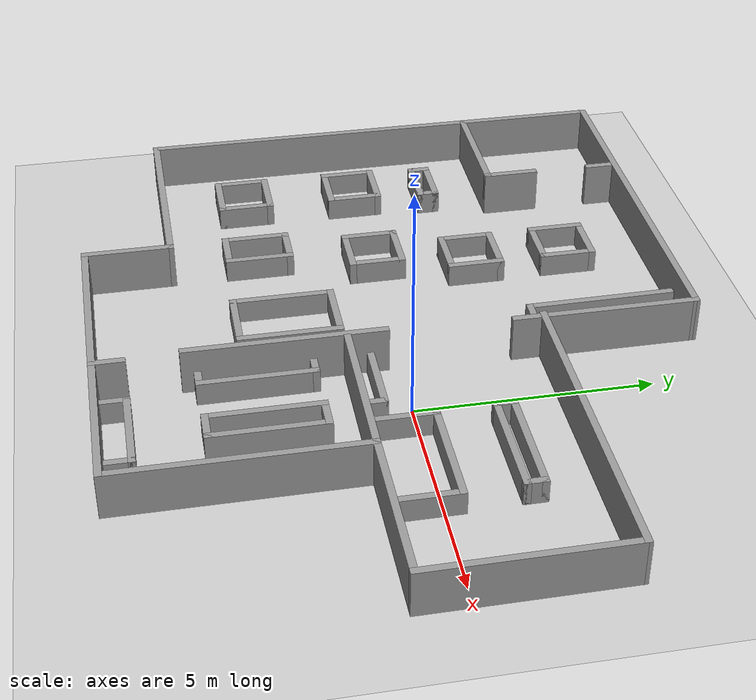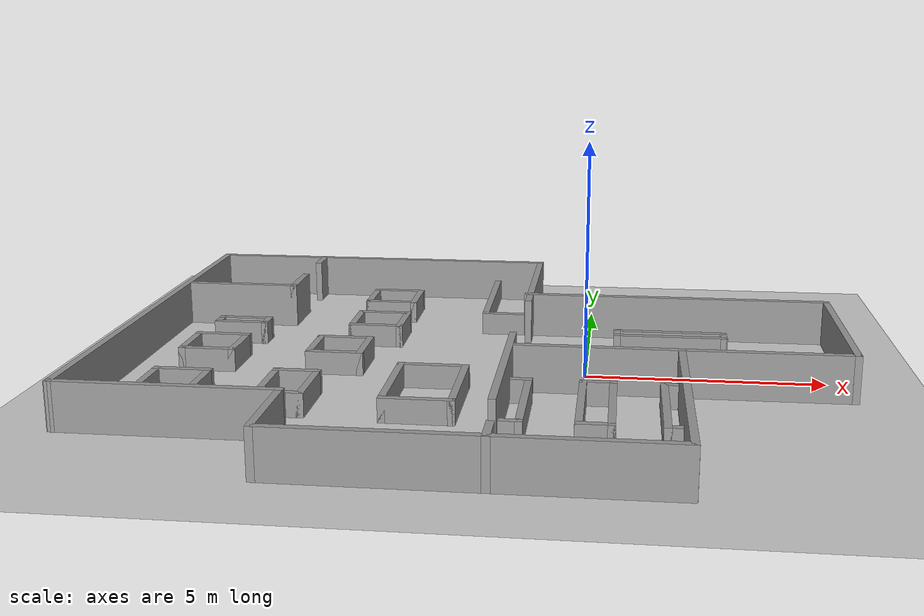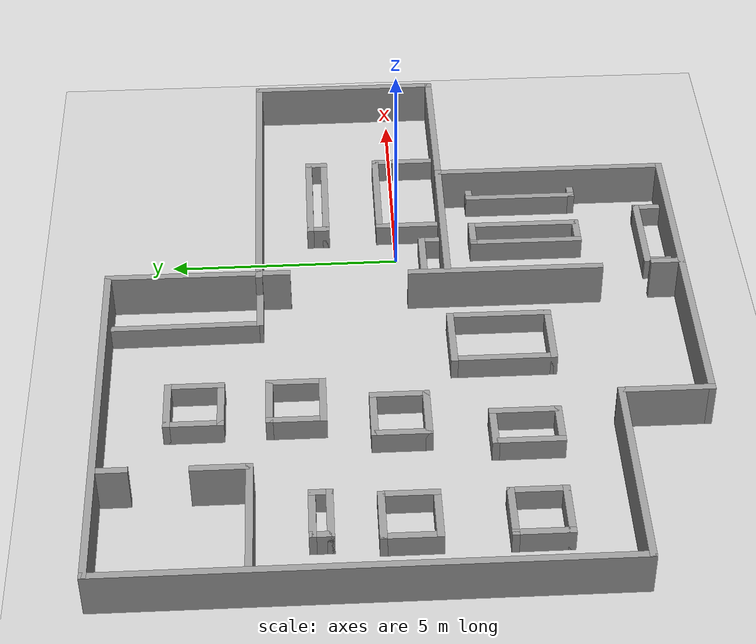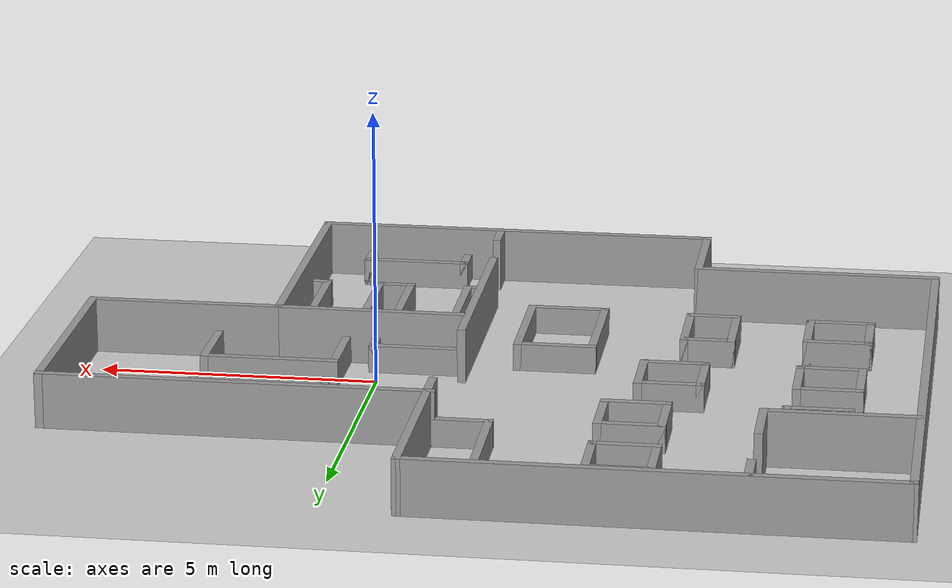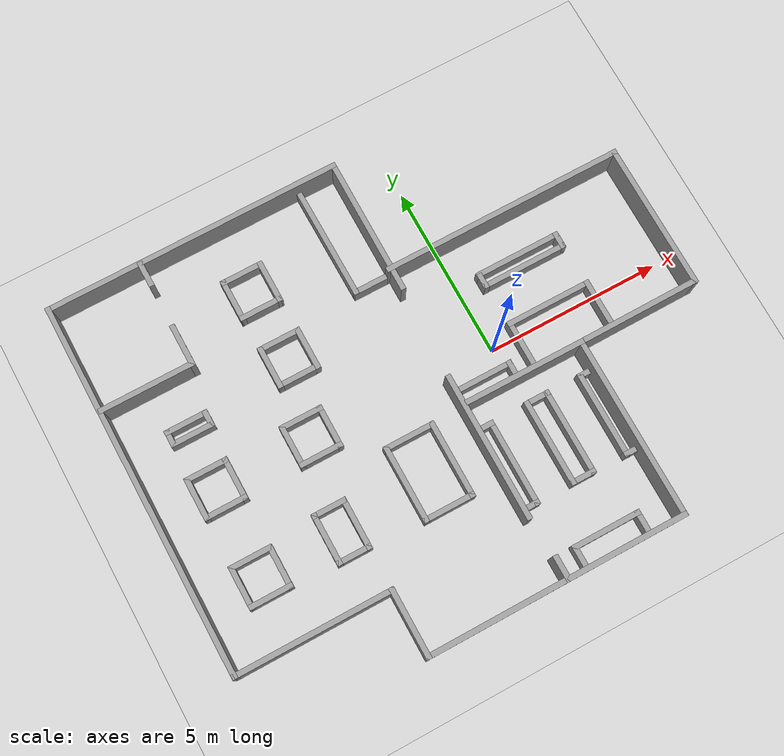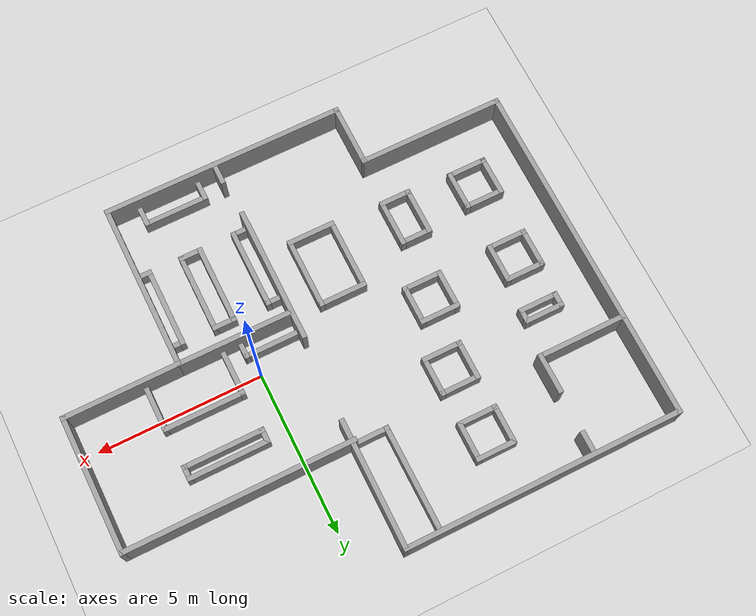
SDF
<sdf version="1.7">
 <world name="default">
  <light name="sun" type="directional">
   <pose>0 0 10 0 -0 0</pose>
   <diffuse>0.8 0.8 0.8 1</diffuse>
   <specular>0.2 0.2 0.2 1</specular>
   <attenuation>
    <range>1000</range>
    <constant>0.9</constant>
    <linear>0.01</linear>
    <quadratic>0.001</quadratic>
   </attenuation>
   <direction>-0.5 0.1 -0.9</direction>
   <spot><inner_angle>0</inner_angle><outer_angle>0</outer_angle><falloff>0</falloff></spot>
  </light>
  <model name="ground_plane">
   <static>1</static>
   <link name="link">
    <collision name="collision">
     <geometry><plane><normal>0 0 1</normal><size>100 100</size></plane></geometry>
     <surface>
      <contact><collide_bitmask>65535</collide_bitmask></contact>
      <friction><ode><mu>100</mu><mu2>50</mu2></ode></friction>
     </surface>
    </collision>
    <visual name="visual">
     <cast_shadows>0</cast_shadows>
     <geometry><plane><normal>0 0 1</normal><size>100 100</size></plane></geometry>
     <material>
      <script><uri>file://media/materials/scripts/gazebo.material</uri><name>Gazebo/Grey</name></script>
     </material>
    </visual>
   </link>
  </model>
  <gravity>0 0 -9.8</gravity>
  <magnetic_field>6e-06 2.3e-05 -4.2e-05</magnetic_field>
  <atmosphere type="adiabatic"/>
  <physics type="ode">
   <max_step_size>0.001</max_step_size>
   <real_time_factor>1</real_time_factor>
   <real_time_update_rate>1000</real_time_update_rate>
  </physics>
  <scene><ambient>0.4 0.4 0.4 1</ambient><background>0.7 0.7 0.7 1</background><shadows>1</shadows></scene>
  <audio><device>default</device></audio>
  <spherical_coordinates>
   <surface_model>EARTH_WGS84</surface_model>
   <latitude_deg>0</latitude_deg>
   <longitude_deg>0</longitude_deg>
   <elevation>0</elevation>
   <heading_deg>0</heading_deg>
  </spherical_coordinates>
  <model name="P1_model">
   <pose>-2.19843 0.064103 0 0 -0 0</pose>
   <link name="Wall_0">
    <collision name="Wall_0_Collision">
     <geometry><box><size>7.5 0.15 1</size></box></geometry>
     <pose>0 0 0.5 0 -0 0</pose>
    </collision>
    <visual name="Wall_0_Visual">
     <pose>0 0 0.5 0 -0 0</pose>
     <geometry><box><size>7.5 0.15 1</size></box></geometry>
     <material>
      <script><uri>file://media/materials/scripts/gazebo.material</uri><name>Gazebo/Grey</name></script>
      <ambient>1 1 1 1</ambient>
     </material>
     <meta><layer>0</layer></meta>
    </visual>
    <pose>0.473428 -6.2241 0 0 -0 3.14159</pose>
   </link>
   <link name="Wall_1">
    <collision name="Wall_1_Collision">
     <geometry><box><size>2 0.15 1</size></box></geometry>
     <pose>0 0 0.5 0 -0 0</pose>
    </collision>
    <visual name="Wall_1_Visual">
     <pose>0 0 0.5 0 -0 0</pose>
     <geometry><box><size>2 0.15 1</size></box></geometry>
     <material>
      <script><uri>file://media/materials/scripts/gazebo.material</uri><name>Gazebo/Grey</name></script>
      <ambient>1 1 1 1</ambient>
     </material>
     <meta><layer>0</layer></meta>
    </visual>
    <pose>-3.20157 -5.2991 0 0 -0 1.5708</pose>
   </link>
   <link name="Wall_10">
    <collision name="Wall_10_Collision">
     <geometry><box><size>0.75 0.15 1</size></box></geometry>
     <pose>0 0 0.5 0 -0 0</pose>
    </collision>
    <visual name="Wall_10_Visual">
     <pose>0 0 0.5 0 -0 0</pose>
     <geometry><box><size>0.75 0.15 1</size></box></geometry>
     <material>
      <script><uri>file://media/materials/scripts/gazebo.material</uri><name>Gazebo/Grey</name></script>
      <ambient>1 1 1 1</ambient>
     </material>
     <meta><layer>0</layer></meta>
    </visual>
    <pose>0.772428 -5.9261 0 0 -0 -1.5708</pose>
   </link>
   <link name="Wall_100">
    <collision name="Wall_100_Collision">
     <geometry><box><size>1.25 0.15 0.5</size></box></geometry>
     <pose>0 0 0.25 0 -0 0</pose>
    </collision>
    <visual name="Wall_100_Visual">
     <pose>0 0 0.25 0 -0 0</pose>
     <geometry><box><size>1.25 0.15 0.5</size></box></geometry>
     <material>
      <script><uri>file://media/materials/scripts/gazebo.material</uri><name>Gazebo/Grey</name></script>
      <ambient>1 1 1 1</ambient>
     </material>
     <meta><layer>0</layer></meta>
    </visual>
    <pose>-3.20357 2.2349 0 0 -0 -1.5708</pose>
   </link>
   <link name="Wall_102">
    <collision name="Wall_102_Collision">
     <geometry><box><size>1.25 0.15 0.5</size></box></geometry>
     <pose>0 0 0.25 0 -0 0</pose>
    </collision>
    <visual name="Wall_102_Visual">
     <pose>0 0 0.25 0 -0 0</pose>
     <geometry><box><size>1.25 0.15 0.5</size></box></geometry>
     <material>
      <script><uri>file://media/materials/scripts/gazebo.material</uri><name>Gazebo/Grey</name></script>
      <ambient>1 1 1 1</ambient>
     </material>
     <meta><layer>0</layer></meta>
    </visual>
    <pose>-2.67657 3.7779 0 0 -0 0</pose>
   </link>
   <link name="Wall_103">
    <collision name="Wall_103_Collision">
     <geometry><box><size>1.25 0.15 0.5</size></box></geometry>
     <pose>0 0 0.25 0 -0 0</pose>
    </collision>
    <visual name="Wall_103_Visual">
     <pose>0 0 0.25 0 -0 0</pose>
     <geometry><box><size>1.25 0.15 0.5</size></box></geometry>
     <material>
      <script><uri>file://media/materials/scripts/gazebo.material</uri><name>Gazebo/Grey</name></script>
      <ambient>1 1 1 1</ambient>
     </material>
     <meta><layer>0</layer></meta>
    </visual>
    <pose>-2.12657 4.3279 0 0 -0 1.5708</pose>
   </link>
   <link name="Wall_104">
    <collision name="Wall_104_Collision">
     <geometry><box><size>1.25 0.15 0.5</size></box></geometry>
     <pose>0 0 0.25 0 -0 0</pose>
    </collision>
    <visual name="Wall_104_Visual">
     <pose>0 0 0.25 0 -0 0</pose>
     <geometry><box><size>1.25 0.15 0.5</size></box></geometry>
     <material>
      <script><uri>file://media/materials/scripts/gazebo.material</uri><name>Gazebo/Grey</name></script>
      <ambient>1 1 1 1</ambient>
     </material>
     <meta><layer>0</layer></meta>
    </visual>
    <pose>-2.67657 4.8779 0 0 -0 3.14159</pose>
   </link>
   <link name="Wall_105">
    <collision name="Wall_105_Collision">
     <geometry><box><size>1.25 0.15 0.5</size></box></geometry>
     <pose>0 0 0.25 0 -0 0</pose>
    </collision>
    <visual name="Wall_105_Visual">
     <pose>0 0 0.25 0 -0 0</pose>
     <geometry><box><size>1.25 0.15 0.5</size></box></geometry>
     <material>
      <script><uri>file://media/materials/scripts/gazebo.material</uri><name>Gazebo/Grey</name></script>
      <ambient>1 1 1 1</ambient>
     </material>
     <meta><layer>0</layer></meta>
    </visual>
    <pose>-3.22657 4.3279 0 0 -0 -1.5708</pose>
   </link>
   <link name="Wall_107">
    <collision name="Wall_107_Collision">
     <geometry><box><size>1 0.15 0.5</size></box></geometry>
     <pose>0 0 0.25 0 -0 0</pose>
    </collision>
    <visual name="Wall_107_Visual">
     <pose>0 0 0.25 0 -0 0</pose>
     <geometry><box><size>1 0.15 0.5</size></box></geometry>
     <material>
      <script><uri>file://media/materials/scripts/gazebo.material</uri><name>Gazebo/Grey</name></script>
      <ambient>1 1 1 1</ambient>
     </material>
     <meta><layer>0</layer></meta>
    </visual>
    <pose>-3.59557 -3.1111 0 0 -0 0</pose>
   </link>
   <link name="Wall_108">
    <collision name="Wall_108_Collision">
     <geometry><box><size>1.5 0.15 0.5</size></box></geometry>
     <pose>0 0 0.25 0 -0 0</pose>
    </collision>
    <visual name="Wall_108_Visual">
     <pose>0 0 0.25 0 -0 0</pose>
     <geometry><box><size>1.5 0.15 0.5</size></box></geometry>
     <material>
      <script><uri>file://media/materials/scripts/gazebo.material</uri><name>Gazebo/Grey</name></script>
      <ambient>1 1 1 1</ambient>
     </material>
     <meta><layer>0</layer></meta>
    </visual>
    <pose>-3.17057 -2.4361 0 0 -0 1.5708</pose>
   </link>
   <link name="Wall_109">
    <collision name="Wall_109_Collision">
     <geometry><box><size>1 0.15 0.5</size></box></geometry>
     <pose>0 0 0.25 0 -0 0</pose>
    </collision>
    <visual name="Wall_109_Visual">
     <pose>0 0 0.25 0 -0 0</pose>
     <geometry><box><size>1 0.15 0.5</size></box></geometry>
     <material>
      <script><uri>file://media/materials/scripts/gazebo.material</uri><name>Gazebo/Grey</name></script>
      <ambient>1 1 1 1</ambient>
     </material>
     <meta><layer>0</layer></meta>
    </visual>
    <pose>-3.59557 -1.7611 0 0 -0 3.14159</pose>
   </link>
   <link name="Wall_110">
    <collision name="Wall_110_Collision">
     <geometry><box><size>1.5 0.15 0.5</size></box></geometry>
     <pose>0 0 0.25 0 -0 0</pose>
    </collision>
    <visual name="Wall_110_Visual">
     <pose>0 0 0.25 0 -0 0</pose>
     <geometry><box><size>1.5 0.15 0.5</size></box></geometry>
     <material>
      <script><uri>file://media/materials/scripts/gazebo.material</uri><name>Gazebo/Grey</name></script>
      <ambient>1 1 1 1</ambient>
     </material>
     <meta><layer>0</layer></meta>
    </visual>
    <pose>-4.02057 -2.4361 0 0 -0 -1.5708</pose>
   </link>
   <link name="Wall_12">
    <collision name="Wall_12_Collision">
     <geometry><box><size>3.50002 0.15 1</size></box></geometry>
     <pose>0 0 0.5 0 -0 0</pose>
    </collision>
    <visual name="Wall_12_Visual">
     <pose>0 0 0.5 0 -0 0</pose>
     <geometry><box><size>3.50002 0.15 1</size></box></geometry>
     <material>
      <script><uri>file://media/materials/scripts/gazebo.material</uri><name>Gazebo/Grey</name></script>
      <ambient>1 1 1 1</ambient>
     </material>
     <meta><layer>0</layer></meta>
    </visual>
    <pose>2.47543 -1.1161 0 0 -0 -0.003582</pose>
   </link>
   <link name="Wall_13">
    <collision name="Wall_13_Collision">
     <geometry><box><size>5.25 0.15 1</size></box></geometry>
     <pose>0 0 0.5 0 -0 0</pose>
    </collision>
    <visual name="Wall_13_Visual">
     <pose>0 0 0.5 0 -0 0</pose>
     <geometry><box><size>5.25 0.15 1</size></box></geometry>
     <material>
      <script><uri>file://media/materials/scripts/gazebo.material</uri><name>Gazebo/Grey</name></script>
      <ambient>1 1 1 1</ambient>
     </material>
     <meta><layer>0</layer></meta>
    </visual>
    <pose>4.15043 -3.6721 0 0 -0 -1.5708</pose>
   </link>
   <link name="Wall_16">
    <collision name="Wall_16_Collision">
     <geometry><box><size>7 0.15 1</size></box></geometry>
     <pose>0 0 0.5 0 -0 0</pose>
    </collision>
    <visual name="Wall_16_Visual">
     <pose>0 0 0.5 0 -0 0</pose>
     <geometry><box><size>7 0.15 1</size></box></geometry>
     <material>
      <script><uri>file://media/materials/scripts/gazebo.material</uri><name>Gazebo/Grey</name></script>
      <ambient>1 1 1 1</ambient>
     </material>
     <meta><layer>0</layer></meta>
    </visual>
    <pose>4.16043 2.9779 0 0 -0 0</pose>
   </link>
   <link name="Wall_17">
    <collision name="Wall_17_Collision">
     <geometry><box><size>4.23857 0.15 1</size></box></geometry>
     <pose>0 0 0.5 0 -0 0</pose>
    </collision>
    <visual name="Wall_17_Visual">
     <pose>0 0 0.5 0 -0 0</pose>
     <geometry><box><size>4.23857 0.15 1</size></box></geometry>
     <material>
      <script><uri>file://media/materials/scripts/gazebo.material</uri><name>Gazebo/Grey</name></script>
      <ambient>1 1 1 1</ambient>
     </material>
     <meta><layer>0</layer></meta>
    </visual>
    <pose>7.59143 0.933897 0 0 -0 -1.56786</pose>
   </link>
   <link name="Wall_18">
    <collision name="Wall_18_Collision">
     <geometry><box><size>3.59664 0.15 1</size></box></geometry>
     <pose>0 0 0.5 0 -0 0</pose>
    </collision>
    <visual name="Wall_18_Visual">
     <pose>0 0 0.5 0 -0 0</pose>
     <geometry><box><size>3.59664 0.15 1</size></box></geometry>
     <material>
      <script><uri>file://media/materials/scripts/gazebo.material</uri><name>Gazebo/Grey</name></script>
      <ambient>1 1 1 1</ambient>
     </material>
     <meta><layer>0</layer></meta>
    </visual>
    <pose>5.87393 -1.1161 0 0 -0 -3.13811</pose>
   </link>
   <link name="Wall_2">
    <collision name="Wall_2_Collision">
     <geometry><box><size>4.5345 0.15 1</size></box></geometry>
     <pose>0 0 0.5 0 -0 0</pose>
    </collision>
    <visual name="Wall_2_Visual">
     <pose>0 0 0.5 0 -0 0</pose>
     <geometry><box><size>4.5345 0.15 1</size></box></geometry>
     <material>
      <script><uri>file://media/materials/scripts/gazebo.material</uri><name>Gazebo/Grey</name></script>
      <ambient>1 1 1 1</ambient>
     </material>
     <meta><layer>0</layer></meta>
    </visual>
    <pose>-5.39382 -4.37385 0 0 -0 3.14148</pose>
   </link>
   <link name="Wall_22">
    <collision name="Wall_22_Collision">
     <geometry><box><size>0.5 0.15 0.5</size></box></geometry>
     <pose>0 0 0.25 0 -0 0</pose>
    </collision>
    <visual name="Wall_22_Visual">
     <pose>0 0 0.25 0 -0 0</pose>
     <geometry><box><size>0.5 0.15 0.5</size></box></geometry>
     <material>
      <script><uri>file://media/materials/scripts/gazebo.material</uri><name>Gazebo/Grey</name></script>
      <ambient>1 1 1 1</ambient>
     </material>
     <meta><layer>0</layer></meta>
    </visual>
    <pose>0.958428 -4.1651 0 0 -0 0</pose>
   </link>
   <link name="Wall_23">
    <collision name="Wall_23_Collision">
     <geometry><box><size>2.50049 0.15 0.5</size></box></geometry>
     <pose>0 0 0.25 0 -0 0</pose>
    </collision>
    <visual name="Wall_23_Visual">
     <pose>0 0 0.25 0 -0 0</pose>
     <geometry><box><size>2.50049 0.15 0.5</size></box></geometry>
     <material>
      <script><uri>file://media/materials/scripts/gazebo.material</uri><name>Gazebo/Grey</name></script>
      <ambient>1 1 1 1</ambient>
     </material>
     <meta><layer>0</layer></meta>
    </visual>
    <pose>1.13343 -2.9901 0 0 -0 1.5708</pose>
   </link>
   <link name="Wall_24">
    <collision name="Wall_24_Collision">
     <geometry><box><size>0.5 0.15 0.5</size></box></geometry>
     <pose>0 0 0.25 0 -0 0</pose>
    </collision>
    <visual name="Wall_24_Visual">
     <pose>0 0 0.25 0 -0 0</pose>
     <geometry><box><size>0.5 0.15 0.5</size></box></geometry>
     <material>
      <script><uri>file://media/materials/scripts/gazebo.material</uri><name>Gazebo/Grey</name></script>
      <ambient>1 1 1 1</ambient>
     </material>
     <meta><layer>0</layer></meta>
    </visual>
    <pose>0.958428 -1.8151 0 0 -0 3.14159</pose>
   </link>
   <link name="Wall_26">
    <collision name="Wall_26_Collision">
     <geometry><box><size>0.5 0.15 0.5</size></box></geometry>
     <pose>0 0 0.25 0 -0 0</pose>
    </collision>
    <visual name="Wall_26_Visual">
     <pose>0 0 0.25 0 -0 0</pose>
     <geometry><box><size>0.5 0.15 0.5</size></box></geometry>
     <material>
      <script><uri>file://media/materials/scripts/gazebo.material</uri><name>Gazebo/Grey</name></script>
      <ambient>1 1 1 1</ambient>
     </material>
     <meta><layer>0</layer></meta>
    </visual>
    <pose>3.97343 -4.1731 0 0 -0 3.14159</pose>
   </link>
   <link name="Wall_27">
    <collision name="Wall_27_Collision">
     <geometry><box><size>2.5 0.15 0.5</size></box></geometry>
     <pose>0 0 0.25 0 -0 0</pose>
    </collision>
    <visual name="Wall_27_Visual">
     <pose>0 0 0.25 0 -0 0</pose>
     <geometry><box><size>2.5 0.15 0.5</size></box></geometry>
     <material>
      <script><uri>file://media/materials/scripts/gazebo.material</uri><name>Gazebo/Grey</name></script>
      <ambient>1 1 1 1</ambient>
     </material>
     <meta><layer>0</layer></meta>
    </visual>
    <pose>3.79843 -2.9981 0 0 -0 1.5708</pose>
   </link>
   <link name="Wall_28">
    <collision name="Wall_28_Collision">
     <geometry><box><size>0.5 0.15 0.5</size></box></geometry>
     <pose>0 0 0.25 0 -0 0</pose>
    </collision>
    <visual name="Wall_28_Visual">
     <pose>0 0 0.25 0 -0 0</pose>
     <geometry><box><size>0.5 0.15 0.5</size></box></geometry>
     <material>
      <script><uri>file://media/materials/scripts/gazebo.material</uri><name>Gazebo/Grey</name></script>
      <ambient>1 1 1 1</ambient>
     </material>
     <meta><layer>0</layer></meta>
    </visual>
    <pose>3.97343 -1.8231 0 0 -0 0</pose>
   </link>
   <link name="Wall_32">
    <collision name="Wall_32_Collision">
     <geometry><box><size>2.5 0.15 0.5</size></box></geometry>
     <pose>0 0 0.25 0 -0 0</pose>
    </collision>
    <visual name="Wall_32_Visual">
     <pose>0 0 0.25 0 -0 0</pose>
     <geometry><box><size>2.5 0.15 0.5</size></box></geometry>
     <material>
      <script><uri>file://media/materials/scripts/gazebo.material</uri><name>Gazebo/Grey</name></script>
      <ambient>1 1 1 1</ambient>
     </material>
     <meta><layer>0</layer></meta>
    </visual>
    <pose>2.20943 -2.9811 0 0 -0 -1.5708</pose>
   </link>
   <link name="Wall_33">
    <collision name="Wall_33_Collision">
     <geometry><box><size>0.743425 0.15 0.5</size></box></geometry>
     <pose>0 0 0.25 0 -0 0</pose>
    </collision>
    <visual name="Wall_33_Visual">
     <pose>0 0 0.25 0 -0 0</pose>
     <geometry><box><size>0.743425 0.15 0.5</size></box></geometry>
     <material>
      <script><uri>file://media/materials/scripts/gazebo.material</uri><name>Gazebo/Grey</name></script>
      <ambient>1 1 1 1</ambient>
     </material>
     <meta><layer>0</layer></meta>
    </visual>
    <pose>2.50643 -4.1561 0 0 -0 0</pose>
   </link>
   <link name="Wall_35">
    <collision name="Wall_35_Collision">
     <geometry><box><size>2.5 0.15 0.5</size></box></geometry>
     <pose>0 0 0.25 0 -0 0</pose>
    </collision>
    <visual name="Wall_35_Visual">
     <pose>0 0 0.25 0 -0 0</pose>
     <geometry><box><size>2.5 0.15 0.5</size></box></geometry>
     <material>
      <script><uri>file://media/materials/scripts/gazebo.material</uri><name>Gazebo/Grey</name></script>
      <ambient>1 1 1 1</ambient>
     </material>
     <meta><layer>0</layer></meta>
    </visual>
    <pose>2.80343 -2.9811 0 0 -0 1.5708</pose>
   </link>
   <link name="Wall_36">
    <collision name="Wall_36_Collision">
     <geometry><box><size>0.743874 0.15 0.5</size></box></geometry>
     <pose>0 0 0.25 0 -0 0</pose>
    </collision>
    <visual name="Wall_36_Visual">
     <pose>0 0 0.25 0 -0 0</pose>
     <geometry><box><size>0.743874 0.15 0.5</size></box></geometry>
     <material>
      <script><uri>file://media/materials/scripts/gazebo.material</uri><name>Gazebo/Grey</name></script>
      <ambient>1 1 1 1</ambient>
     </material>
     <meta><layer>0</layer></meta>
    </visual>
    <pose>2.50643 -1.8061 0 0 -0 3.14159</pose>
   </link>
   <link name="Wall_38">
    <collision name="Wall_38_Collision">
     <geometry><box><size>0.75 0.15 0.5</size></box></geometry>
     <pose>0 0 0.25 0 -0 0</pose>
    </collision>
    <visual name="Wall_38_Visual">
     <pose>0 0 0.25 0 -0 0</pose>
     <geometry><box><size>0.75 0.15 0.5</size></box></geometry>
     <material>
      <script><uri>file://media/materials/scripts/gazebo.material</uri><name>Gazebo/Grey</name></script>
      <ambient>1 1 1 1</ambient>
     </material>
     <meta><layer>0</layer></meta>
    </visual>
    <pose>1.40743 -5.9111 0 0 -0 1.5708</pose>
   </link>
   <link name="Wall_39">
    <collision name="Wall_39_Collision">
     <geometry><box><size>2 0.15 0.5</size></box></geometry>
     <pose>0 0 0.25 0 -0 0</pose>
    </collision>
    <visual name="Wall_39_Visual">
     <pose>0 0 0.25 0 -0 0</pose>
     <geometry><box><size>2 0.15 0.5</size></box></geometry>
     <material>
      <script><uri>file://media/materials/scripts/gazebo.material</uri><name>Gazebo/Grey</name></script>
      <ambient>1 1 1 1</ambient>
     </material>
     <meta><layer>0</layer></meta>
    </visual>
    <pose>2.33243 -5.6111 0 0 -0 0</pose>
   </link>
   <link name="Wall_4">
    <collision name="Wall_4_Collision">
     <geometry><box><size>10.749 0.15 1</size></box></geometry>
     <pose>0 0 0.5 0 -0 0</pose>
    </collision>
    <visual name="Wall_4_Visual">
     <pose>0 0 0.5 0 -0 0</pose>
     <geometry><box><size>10.749 0.15 1</size></box></geometry>
     <material>
      <script><uri>file://media/materials/scripts/gazebo.material</uri><name>Gazebo/Grey</name></script>
      <ambient>1 1 1 1</ambient>
     </material>
     <meta><layer>0</layer></meta>
    </visual>
    <pose>-7.59207 0.925897 0 0 -0 1.56976</pose>
   </link>
   <link name="Wall_40">
    <collision name="Wall_40_Collision">
     <geometry><box><size>0.75 0.15 0.5</size></box></geometry>
     <pose>0 0 0.25 0 -0 0</pose>
    </collision>
    <visual name="Wall_40_Visual">
     <pose>0 0 0.25 0 -0 0</pose>
     <geometry><box><size>0.75 0.15 0.5</size></box></geometry>
     <material>
      <script><uri>file://media/materials/scripts/gazebo.material</uri><name>Gazebo/Grey</name></script>
      <ambient>1 1 1 1</ambient>
     </material>
     <meta><layer>0</layer></meta>
    </visual>
    <pose>3.25743 -5.9111 0 0 -0 -1.5708</pose>
   </link>
   <link name="Wall_43">
    <collision name="Wall_43_Collision">
     <geometry><box><size>1.75 0.15 0.5</size></box></geometry>
     <pose>0 0 0.25 0 -0 0</pose>
    </collision>
    <visual name="Wall_43_Visual">
     <pose>0 0 0.25 0 -0 0</pose>
     <geometry><box><size>1.75 0.15 0.5</size></box></geometry>
     <material>
      <script><uri>file://media/materials/scripts/gazebo.material</uri><name>Gazebo/Grey</name></script>
      <ambient>1 1 1 1</ambient>
     </material>
     <meta><layer>0</layer></meta>
    </visual>
    <pose>1.54343 -0.642103 0 0 -0 0</pose>
   </link>
   <link name="Wall_44">
    <collision name="Wall_44_Collision">
     <geometry><box><size>0.5 0.15 0.5</size></box></geometry>
     <pose>0 0 0.25 0 -0 0</pose>
    </collision>
    <visual name="Wall_44_Visual">
     <pose>0 0 0.25 0 -0 0</pose>
     <geometry><box><size>0.5 0.15 0.5</size></box></geometry>
     <material>
      <script><uri>file://media/materials/scripts/gazebo.material</uri><name>Gazebo/Grey</name></script>
      <ambient>1 1 1 1</ambient>
     </material>
     <meta><layer>0</layer></meta>
    </visual>
    <pose>2.34343 -0.817103 0 0 -0 -1.5708</pose>
   </link>
   <link name="Wall_46">
    <collision name="Wall_46_Collision">
     <geometry><box><size>1.5 0.15 0.5</size></box></geometry>
     <pose>0 0 0.25 0 -0 0</pose>
    </collision>
    <visual name="Wall_46_Visual">
     <pose>0 0 0.25 0 -0 0</pose>
     <geometry><box><size>1.5 0.15 0.5</size></box></geometry>
     <material>
      <script><uri>file://media/materials/scripts/gazebo.material</uri><name>Gazebo/Grey</name></script>
      <ambient>1 1 1 1</ambient>
     </material>
     <meta><layer>0</layer></meta>
    </visual>
    <pose>2.89343 -0.394103 0 0 -0 1.5708</pose>
   </link>
   <link name="Wall_47">
    <collision name="Wall_47_Collision">
     <geometry><box><size>2.5 0.15 0.5</size></box></geometry>
     <pose>0 0 0.25 0 -0 0</pose>
    </collision>
    <visual name="Wall_47_Visual">
     <pose>0 0 0.25 0 -0 0</pose>
     <geometry><box><size>2.5 0.15 0.5</size></box></geometry>
     <material>
      <script><uri>file://media/materials/scripts/gazebo.material</uri><name>Gazebo/Grey</name></script>
      <ambient>1 1 1 1</ambient>
     </material>
     <meta><layer>0</layer></meta>
    </visual>
    <pose>4.06843 0.280897 0 0 -0 0</pose>
   </link>
   <link name="Wall_49">
    <collision name="Wall_49_Collision">
     <geometry><box><size>1.5 0.15 0.5</size></box></geometry>
     <pose>0 0 0.25 0 -0 0</pose>
    </collision>
    <visual name="Wall_49_Visual">
     <pose>0 0 0.25 0 -0 0</pose>
     <geometry><box><size>1.5 0.15 0.5</size></box></geometry>
     <material>
      <script><uri>file://media/materials/scripts/gazebo.material</uri><name>Gazebo/Grey</name></script>
      <ambient>1 1 1 1</ambient>
     </material>
     <meta><layer>0</layer></meta>
    </visual>
    <pose>5.24343 -0.394103 0 0 -0 -1.5708</pose>
   </link>
   <link name="Wall_5">
    <collision name="Wall_5_Collision">
     <geometry><box><size>8.5345 0.15 1</size></box></geometry>
     <pose>0 0 0.5 0 -0 0</pose>
    </collision>
    <visual name="Wall_5_Visual">
     <pose>0 0 0.5 0 -0 0</pose>
     <geometry><box><size>8.5345 0.15 1</size></box></geometry>
     <material>
      <script><uri>file://media/materials/scripts/gazebo.material</uri><name>Gazebo/Grey</name></script>
      <ambient>1 1 1 1</ambient>
     </material>
     <meta><layer>0</layer></meta>
    </visual>
    <pose>-3.38282 6.22565 0 0 -0 6e-05</pose>
   </link>
   <link name="Wall_51">
    <collision name="Wall_51_Collision">
     <geometry><box><size>2.5 0.15 0.5</size></box></geometry>
     <pose>0 0 0.25 0 -0 0</pose>
    </collision>
    <visual name="Wall_51_Visual">
     <pose>0 0 0.25 0 -0 0</pose>
     <geometry><box><size>2.5 0.15 0.5</size></box></geometry>
     <material>
      <script><uri>file://media/materials/scripts/gazebo.material</uri><name>Gazebo/Grey</name></script>
      <ambient>1 1 1 1</ambient>
     </material>
     <meta><layer>0</layer></meta>
    </visual>
    <pose>4.02243 1.4889 0 0 -0 0</pose>
   </link>
   <link name="Wall_52">
    <collision name="Wall_52_Collision">
     <geometry><box><size>0.5 0.15 0.5</size></box></geometry>
     <pose>0 0 0.25 0 -0 0</pose>
    </collision>
    <visual name="Wall_52_Visual">
     <pose>0 0 0.25 0 -0 0</pose>
     <geometry><box><size>0.5 0.15 0.5</size></box></geometry>
     <material>
      <script><uri>file://media/materials/scripts/gazebo.material</uri><name>Gazebo/Grey</name></script>
      <ambient>1 1 1 1</ambient>
     </material>
     <meta><layer>0</layer></meta>
    </visual>
    <pose>5.19743 1.6639 0 0 -0 1.5708</pose>
   </link>
   <link name="Wall_53">
    <collision name="Wall_53_Collision">
     <geometry><box><size>2.5 0.15 0.5</size></box></geometry>
     <pose>0 0 0.25 0 -0 0</pose>
    </collision>
    <visual name="Wall_53_Visual">
     <pose>0 0 0.25 0 -0 0</pose>
     <geometry><box><size>2.5 0.15 0.5</size></box></geometry>
     <material>
      <script><uri>file://media/materials/scripts/gazebo.material</uri><name>Gazebo/Grey</name></script>
      <ambient>1 1 1 1</ambient>
     </material>
     <meta><layer>0</layer></meta>
    </visual>
    <pose>4.02243 1.8389 0 0 -0 3.14159</pose>
   </link>
   <link name="Wall_54">
    <collision name="Wall_54_Collision">
     <geometry><box><size>0.5 0.15 0.5</size></box></geometry>
     <pose>0 0 0.25 0 -0 0</pose>
    </collision>
    <visual name="Wall_54_Visual">
     <pose>0 0 0.25 0 -0 0</pose>
     <geometry><box><size>0.5 0.15 0.5</size></box></geometry>
     <material>
      <script><uri>file://media/materials/scripts/gazebo.material</uri><name>Gazebo/Grey</name></script>
      <ambient>1 1 1 1</ambient>
     </material>
     <meta><layer>0</layer></meta>
    </visual>
    <pose>2.84743 1.6639 0 0 -0 -1.5708</pose>
   </link>
   <link name="Wall_56">
    <collision name="Wall_56_Collision">
     <geometry><box><size>1.5 0.15 0.5</size></box></geometry>
     <pose>0 0 0.25 0 -0 0</pose>
    </collision>
    <visual name="Wall_56_Visual">
     <pose>0 0 0.25 0 -0 0</pose>
     <geometry><box><size>1.5 0.15 0.5</size></box></geometry>
     <material>
      <script><uri>file://media/materials/scripts/gazebo.material</uri><name>Gazebo/Grey</name></script>
      <ambient>1 1 1 1</ambient>
     </material>
     <meta><layer>0</layer></meta>
    </visual>
    <pose>-0.895572 -3.2031 0 0 -0 0</pose>
   </link>
   <link name="Wall_57">
    <collision name="Wall_57_Collision">
     <geometry><box><size>2.25 0.15 0.5</size></box></geometry>
     <pose>0 0 0.25 0 -0 0</pose>
    </collision>
    <visual name="Wall_57_Visual">
     <pose>0 0 0.25 0 -0 0</pose>
     <geometry><box><size>2.25 0.15 0.5</size></box></geometry>
     <material>
      <script><uri>file://media/materials/scripts/gazebo.material</uri><name>Gazebo/Grey</name></script>
      <ambient>1 1 1 1</ambient>
     </material>
     <meta><layer>0</layer></meta>
    </visual>
    <pose>-0.220572 -2.1531 0 0 -0 1.5708</pose>
   </link>
   <link name="Wall_58">
    <collision name="Wall_58_Collision">
     <geometry><box><size>1.5 0.15 0.5</size></box></geometry>
     <pose>0 0 0.25 0 -0 0</pose>
    </collision>
    <visual name="Wall_58_Visual">
     <pose>0 0 0.25 0 -0 0</pose>
     <geometry><box><size>1.5 0.15 0.5</size></box></geometry>
     <material>
      <script><uri>file://media/materials/scripts/gazebo.material</uri><name>Gazebo/Grey</name></script>
      <ambient>1 1 1 1</ambient>
     </material>
     <meta><layer>0</layer></meta>
    </visual>
    <pose>-0.895572 -1.1031 0 0 -0 3.14159</pose>
   </link>
   <link name="Wall_59">
    <collision name="Wall_59_Collision">
     <geometry><box><size>2.25 0.15 0.5</size></box></geometry>
     <pose>0 0 0.25 0 -0 0</pose>
    </collision>
    <visual name="Wall_59_Visual">
     <pose>0 0 0.25 0 -0 0</pose>
     <geometry><box><size>2.25 0.15 0.5</size></box></geometry>
     <material>
      <script><uri>file://media/materials/scripts/gazebo.material</uri><name>Gazebo/Grey</name></script>
      <ambient>1 1 1 1</ambient>
     </material>
     <meta><layer>0</layer></meta>
    </visual>
    <pose>-1.57057 -2.1531 0 0 -0 -1.5708</pose>
   </link>
   <link name="Wall_6">
    <collision name="Wall_6_Collision">
     <geometry><box><size>4 0.15 1</size></box></geometry>
     <pose>0 0 0.5 0 -0 0</pose>
    </collision>
    <visual name="Wall_6_Visual">
     <pose>0 0 0.5 0 -0 0</pose>
     <geometry><box><size>4 0.15 1</size></box></geometry>
     <material>
      <script><uri>file://media/materials/scripts/gazebo.material</uri><name>Gazebo/Grey</name></script>
      <ambient>1 1 1 1</ambient>
     </material>
     <meta><layer>0</layer></meta>
    </visual>
    <pose>0.803928 4.3009 0 0 -0 -1.57365</pose>
   </link>
   <link name="Wall_62">
    <collision name="Wall_62_Collision">
     <geometry><box><size>1.147 0.15 0.5</size></box></geometry>
     <pose>0 0 0.25 0 -0 0</pose>
    </collision>
    <visual name="Wall_62_Visual">
     <pose>0 0 0.25 0 -0 0</pose>
     <geometry><box><size>1.147 0.15 0.5</size></box></geometry>
     <material>
      <script><uri>file://media/materials/scripts/gazebo.material</uri><name>Gazebo/Grey</name></script>
      <ambient>1 1 1 1</ambient>
     </material>
     <meta><layer>0</layer></meta>
    </visual>
    <pose>0.236928 2.97815 0 0 -0 3.14109</pose>
   </link>
   <link name="Wall_63">
    <collision name="Wall_63_Collision">
     <geometry><box><size>3.25008 0.15 0.5</size></box></geometry>
     <pose>0 0 0.25 0 -0 0</pose>
    </collision>
    <visual name="Wall_63_Visual">
     <pose>0 0 0.25 0 -0 0</pose>
     <geometry><box><size>3.25008 0.15 0.5</size></box></geometry>
     <material>
      <script><uri>file://media/materials/scripts/gazebo.material</uri><name>Gazebo/Grey</name></script>
      <ambient>1 1 1 1</ambient>
     </material>
     <meta><layer>0</layer></meta>
    </visual>
    <pose>-0.273072 4.5399 0 0 -0 1.57822</pose>
   </link>
   <link name="Wall_66">
    <collision name="Wall_66_Collision">
     <geometry><box><size>2.75 0.15 1</size></box></geometry>
     <pose>0 0 0.5 0 -0 0</pose>
    </collision>
    <visual name="Wall_66_Visual">
     <pose>0 0 0.5 0 -0 0</pose>
     <geometry><box><size>2.75 0.15 1</size></box></geometry>
     <material>
      <script><uri>file://media/materials/scripts/gazebo.material</uri><name>Gazebo/Grey</name></script>
      <ambient>1 1 1 1</ambient>
     </material>
     <meta><layer>0</layer></meta>
    </visual>
    <pose>-6.25057 3.1569 0 0 -0 0</pose>
   </link>
   <link name="Wall_67">
    <collision name="Wall_67_Collision">
     <geometry><box><size>1.25 0.15 1</size></box></geometry>
     <pose>0 0 0.5 0 -0 0</pose>
    </collision>
    <visual name="Wall_67_Visual">
     <pose>0 0 0.5 0 -0 0</pose>
     <geometry><box><size>1.25 0.15 1</size></box></geometry>
     <material>
      <script><uri>file://media/materials/scripts/gazebo.material</uri><name>Gazebo/Grey</name></script>
      <ambient>1 1 1 1</ambient>
     </material>
     <meta><layer>0</layer></meta>
    </visual>
    <pose>-4.95057 3.7069 0 0 -0 1.5708</pose>
   </link>
   <link name="Wall_69">
    <collision name="Wall_69_Collision">
     <geometry><box><size>0.75 0.15 1</size></box></geometry>
     <pose>0 0 0.5 0 -0 0</pose>
    </collision>
    <visual name="Wall_69_Visual">
     <pose>0 0 0.5 0 -0 0</pose>
     <geometry><box><size>0.75 0.15 1</size></box></geometry>
     <material>
      <script><uri>file://media/materials/scripts/gazebo.material</uri><name>Gazebo/Grey</name></script>
      <ambient>1 1 1 1</ambient>
     </material>
     <meta><layer>0</layer></meta>
    </visual>
    <pose>-4.92857 5.8929 0 0 -0 -1.5708</pose>
   </link>
   <link name="Wall_71">
    <collision name="Wall_71_Collision">
     <geometry><box><size>1.25 0.15 0.5</size></box></geometry>
     <pose>0 0 0.25 0 -0 0</pose>
    </collision>
    <visual name="Wall_71_Visual">
     <pose>0 0 0.25 0 -0 0</pose>
     <geometry><box><size>1.25 0.15 0.5</size></box></geometry>
     <material>
      <script><uri>file://media/materials/scripts/gazebo.material</uri><name>Gazebo/Grey</name></script>
      <ambient>1 1 1 1</ambient>
     </material>
     <meta><layer>0</layer></meta>
    </visual>
    <pose>-5.93157 -3.0301 0 0 -0 0</pose>
   </link>
   <link name="Wall_72">
    <collision name="Wall_72_Collision">
     <geometry><box><size>1.25 0.15 0.5</size></box></geometry>
     <pose>0 0 0.25 0 -0 0</pose>
    </collision>
    <visual name="Wall_72_Visual">
     <pose>0 0 0.25 0 -0 0</pose>
     <geometry><box><size>1.25 0.15 0.5</size></box></geometry>
     <material>
      <script><uri>file://media/materials/scripts/gazebo.material</uri><name>Gazebo/Grey</name></script>
      <ambient>1 1 1 1</ambient>
     </material>
     <meta><layer>0</layer></meta>
    </visual>
    <pose>-5.38157 -2.4801 0 0 -0 1.5708</pose>
   </link>
   <link name="Wall_73">
    <collision name="Wall_73_Collision">
     <geometry><box><size>1.25 0.15 0.5</size></box></geometry>
     <pose>0 0 0.25 0 -0 0</pose>
    </collision>
    <visual name="Wall_73_Visual">
     <pose>0 0 0.25 0 -0 0</pose>
     <geometry><box><size>1.25 0.15 0.5</size></box></geometry>
     <material>
      <script><uri>file://media/materials/scripts/gazebo.material</uri><name>Gazebo/Grey</name></script>
      <ambient>1 1 1 1</ambient>
     </material>
     <meta><layer>0</layer></meta>
    </visual>
    <pose>-5.93157 -1.9301 0 0 -0 3.14159</pose>
   </link>
   <link name="Wall_74">
    <collision name="Wall_74_Collision">
     <geometry><box><size>1.25 0.15 0.5</size></box></geometry>
     <pose>0 0 0.25 0 -0 0</pose>
    </collision>
    <visual name="Wall_74_Visual">
     <pose>0 0 0.25 0 -0 0</pose>
     <geometry><box><size>1.25 0.15 0.5</size></box></geometry>
     <material>
      <script><uri>file://media/materials/scripts/gazebo.material</uri><name>Gazebo/Grey</name></script>
      <ambient>1 1 1 1</ambient>
     </material>
     <meta><layer>0</layer></meta>
    </visual>
    <pose>-6.48157 -2.4801 0 0 -0 -1.5708</pose>
   </link>
   <link name="Wall_76">
    <collision name="Wall_76_Collision">
     <geometry><box><size>1.25 0.15 0.5</size></box></geometry>
     <pose>0 0 0.25 0 -0 0</pose>
    </collision>
    <visual name="Wall_76_Visual">
     <pose>0 0 0.25 0 -0 0</pose>
     <geometry><box><size>1.25 0.15 0.5</size></box></geometry>
     <material>
      <script><uri>file://media/materials/scripts/gazebo.material</uri><name>Gazebo/Grey</name></script>
      <ambient>1 1 1 1</ambient>
     </material>
     <meta><layer>0</layer></meta>
    </visual>
    <pose>-5.35457 0.060897 0 0 -0 1.5708</pose>
   </link>
   <link name="Wall_77">
    <collision name="Wall_77_Collision">
     <geometry><box><size>1.25 0.15 0.5</size></box></geometry>
     <pose>0 0 0.25 0 -0 0</pose>
    </collision>
    <visual name="Wall_77_Visual">
     <pose>0 0 0.25 0 -0 0</pose>
     <geometry><box><size>1.25 0.15 0.5</size></box></geometry>
     <material>
      <script><uri>file://media/materials/scripts/gazebo.material</uri><name>Gazebo/Grey</name></script>
      <ambient>1 1 1 1</ambient>
     </material>
     <meta><layer>0</layer></meta>
    </visual>
    <pose>-5.90457 0.610897 0 0 -0 3.14159</pose>
   </link>
   <link name="Wall_78">
    <collision name="Wall_78_Collision">
     <geometry><box><size>1.25 0.15 0.5</size></box></geometry>
     <pose>0 0 0.25 0 -0 0</pose>
    </collision>
    <visual name="Wall_78_Visual">
     <pose>0 0 0.25 0 -0 0</pose>
     <geometry><box><size>1.25 0.15 0.5</size></box></geometry>
     <material>
      <script><uri>file://media/materials/scripts/gazebo.material</uri><name>Gazebo/Grey</name></script>
      <ambient>1 1 1 1</ambient>
     </material>
     <meta><layer>0</layer></meta>
    </visual>
    <pose>-6.45457 0.060897 0 0 -0 -1.5708</pose>
   </link>
   <link name="Wall_79">
    <collision name="Wall_79_Collision">
     <geometry><box><size>1.25 0.15 0.5</size></box></geometry>
     <pose>0 0 0.25 0 -0 0</pose>
    </collision>
    <visual name="Wall_79_Visual">
     <pose>0 0 0.25 0 -0 0</pose>
     <geometry><box><size>1.25 0.15 0.5</size></box></geometry>
     <material>
      <script><uri>file://media/materials/scripts/gazebo.material</uri><name>Gazebo/Grey</name></script>
      <ambient>1 1 1 1</ambient>
     </material>
     <meta><layer>0</layer></meta>
    </visual>
    <pose>-5.90457 -0.489103 0 0 -0 0</pose>
   </link>
   <link name="Wall_8">
    <collision name="Wall_8_Collision">
     <geometry><box><size>4.25 0.15 1</size></box></geometry>
     <pose>0 0 0.5 0 -0 0</pose>
    </collision>
    <visual name="Wall_8_Visual">
     <pose>0 0 0.5 0 -0 0</pose>
     <geometry><box><size>4.25 0.15 1</size></box></geometry>
     <material>
      <script><uri>file://media/materials/scripts/gazebo.material</uri><name>Gazebo/Grey</name></script>
      <ambient>1 1 1 1</ambient>
     </material>
     <meta><layer>0</layer></meta>
    </visual>
    <pose>0.681428 -2.3681 0 0 -0 -1.5708</pose>
   </link>
   <link name="Wall_83">
    <collision name="Wall_83_Collision">
     <geometry><box><size>1.25 0.15 0.5</size></box></geometry>
     <pose>0 0 0.25 0 -0 0</pose>
    </collision>
    <visual name="Wall_83_Visual">
     <pose>0 0 0.25 0 -0 0</pose>
     <geometry><box><size>1.25 0.15 0.5</size></box></geometry>
     <material>
      <script><uri>file://media/materials/scripts/gazebo.material</uri><name>Gazebo/Grey</name></script>
      <ambient>1 1 1 1</ambient>
     </material>
     <meta><layer>0</layer></meta>
    </visual>
    <pose>-3.12557 -0.443103 0 0 -0 0</pose>
   </link>
   <link name="Wall_85">
    <collision name="Wall_85_Collision">
     <geometry><box><size>1.25 0.15 0.5</size></box></geometry>
     <pose>0 0 0.25 0 -0 0</pose>
    </collision>
    <visual name="Wall_85_Visual">
     <pose>0 0 0.25 0 -0 0</pose>
     <geometry><box><size>1.25 0.15 0.5</size></box></geometry>
     <material>
      <script><uri>file://media/materials/scripts/gazebo.material</uri><name>Gazebo/Grey</name></script>
      <ambient>1 1 1 1</ambient>
     </material>
     <meta><layer>0</layer></meta>
    </visual>
    <pose>-3.67557 0.106897 0 0 -0 1.5708</pose>
   </link>
   <link name="Wall_86">
    <collision name="Wall_86_Collision">
     <geometry><box><size>1.25 0.15 0.5</size></box></geometry>
     <pose>0 0 0.25 0 -0 0</pose>
    </collision>
    <visual name="Wall_86_Visual">
     <pose>0 0 0.25 0 -0 0</pose>
     <geometry><box><size>1.25 0.15 0.5</size></box></geometry>
     <material>
      <script><uri>file://media/materials/scripts/gazebo.material</uri><name>Gazebo/Grey</name></script>
      <ambient>1 1 1 1</ambient>
     </material>
     <meta><layer>0</layer></meta>
    </visual>
    <pose>-3.12557 0.656897 0 0 -0 0</pose>
   </link>
   <link name="Wall_88">
    <collision name="Wall_88_Collision">
     <geometry><box><size>1.25 0.15 0.5</size></box></geometry>
     <pose>0 0 0.25 0 -0 0</pose>
    </collision>
    <visual name="Wall_88_Visual">
     <pose>0 0 0.25 0 -0 0</pose>
     <geometry><box><size>1.25 0.15 0.5</size></box></geometry>
     <material>
      <script><uri>file://media/materials/scripts/gazebo.material</uri><name>Gazebo/Grey</name></script>
      <ambient>1 1 1 1</ambient>
     </material>
     <meta><layer>0</layer></meta>
    </visual>
    <pose>-2.57557 0.106897 0 0 -0 -1.5708</pose>
   </link>
   <link name="Wall_90">
    <collision name="Wall_90_Collision">
     <geometry><box><size>1.25 0.15 0.5</size></box></geometry>
     <pose>0 0 0.25 0 -0 0</pose>
    </collision>
    <visual name="Wall_90_Visual">
     <pose>0 0 0.25 0 -0 0</pose>
     <geometry><box><size>1.25 0.15 0.5</size></box></geometry>
     <material>
      <script><uri>file://media/materials/scripts/gazebo.material</uri><name>Gazebo/Grey</name></script>
      <ambient>1 1 1 1</ambient>
     </material>
     <meta><layer>0</layer></meta>
    </visual>
    <pose>-5.79357 1.6159 0 0 -0 0</pose>
   </link>
   <link name="Wall_91">
    <collision name="Wall_91_Collision">
     <geometry><box><size>0.5 0.15 0.5</size></box></geometry>
     <pose>0 0 0.25 0 -0 0</pose>
    </collision>
    <visual name="Wall_91_Visual">
     <pose>0 0 0.25 0 -0 0</pose>
     <geometry><box><size>0.5 0.15 0.5</size></box></geometry>
     <material>
      <script><uri>file://media/materials/scripts/gazebo.material</uri><name>Gazebo/Grey</name></script>
      <ambient>1 1 1 1</ambient>
     </material>
     <meta><layer>0</layer></meta>
    </visual>
    <pose>-5.24357 1.7909 0 0 -0 1.5708</pose>
   </link>
   <link name="Wall_92">
    <collision name="Wall_92_Collision">
     <geometry><box><size>1.25 0.15 0.5</size></box></geometry>
     <pose>0 0 0.25 0 -0 0</pose>
    </collision>
    <visual name="Wall_92_Visual">
     <pose>0 0 0.25 0 -0 0</pose>
     <geometry><box><size>1.25 0.15 0.5</size></box></geometry>
     <material>
      <script><uri>file://media/materials/scripts/gazebo.material</uri><name>Gazebo/Grey</name></script>
      <ambient>1 1 1 1</ambient>
     </material>
     <meta><layer>0</layer></meta>
    </visual>
    <pose>-5.79357 1.9659 0 0 -0 3.14159</pose>
   </link>
   <link name="Wall_93">
    <collision name="Wall_93_Collision">
     <geometry><box><size>0.5 0.15 0.5</size></box></geometry>
     <pose>0 0 0.25 0 -0 0</pose>
    </collision>
    <visual name="Wall_93_Visual">
     <pose>0 0 0.25 0 -0 0</pose>
     <geometry><box><size>0.5 0.15 0.5</size></box></geometry>
     <material>
      <script><uri>file://media/materials/scripts/gazebo.material</uri><name>Gazebo/Grey</name></script>
      <ambient>1 1 1 1</ambient>
     </material>
     <meta><layer>0</layer></meta>
    </visual>
    <pose>-6.34357 1.7909 0 0 -0 -1.5708</pose>
   </link>
   <link name="Wall_97">
    <collision name="Wall_97_Collision">
     <geometry><box><size>1.25 0.15 0.5</size></box></geometry>
     <pose>0 0 0.25 0 -0 0</pose>
    </collision>
    <visual name="Wall_97_Visual">
     <pose>0 0 0.25 0 -0 0</pose>
     <geometry><box><size>1.25 0.15 0.5</size></box></geometry>
     <material>
      <script><uri>file://media/materials/scripts/gazebo.material</uri><name>Gazebo/Grey</name></script>
      <ambient>1 1 1 1</ambient>
     </material>
     <meta><layer>0</layer></meta>
    </visual>
    <pose>-2.65357 1.6849 0 0 -0 0</pose>
   </link>
   <link name="Wall_98">
    <collision name="Wall_98_Collision">
     <geometry><box><size>1.25 0.15 0.5</size></box></geometry>
     <pose>0 0 0.25 0 -0 0</pose>
    </collision>
    <visual name="Wall_98_Visual">
     <pose>0 0 0.25 0 -0 0</pose>
     <geometry><box><size>1.25 0.15 0.5</size></box></geometry>
     <material>
      <script><uri>file://media/materials/scripts/gazebo.material</uri><name>Gazebo/Grey</name></script>
      <ambient>1 1 1 1</ambient>
     </material>
     <meta><layer>0</layer></meta>
    </visual>
    <pose>-2.10357 2.2349 0 0 -0 1.5708</pose>
   </link>
   <link name="Wall_99">
    <collision name="Wall_99_Collision">
     <geometry><box><size>1.25 0.15 0.5</size></box></geometry>
     <pose>0 0 0.25 0 -0 0</pose>
    </collision>
    <visual name="Wall_99_Visual">
     <pose>0 0 0.25 0 -0 0</pose>
     <geometry><box><size>1.25 0.15 0.5</size></box></geometry>
     <material>
      <script><uri>file://media/materials/scripts/gazebo.material</uri><name>Gazebo/Grey</name></script>
      <ambient>1 1 1 1</ambient>
     </material>
     <meta><layer>0</layer></meta>
    </visual>
    <pose>-2.65357 2.7849 0 0 -0 3.14159</pose>
   </link>
   <static>1</static>
  </model>
 </world>
</sdf>
